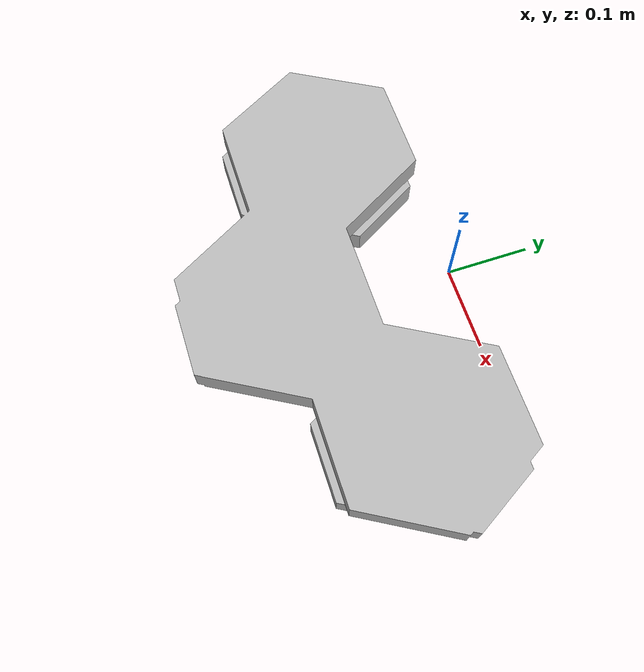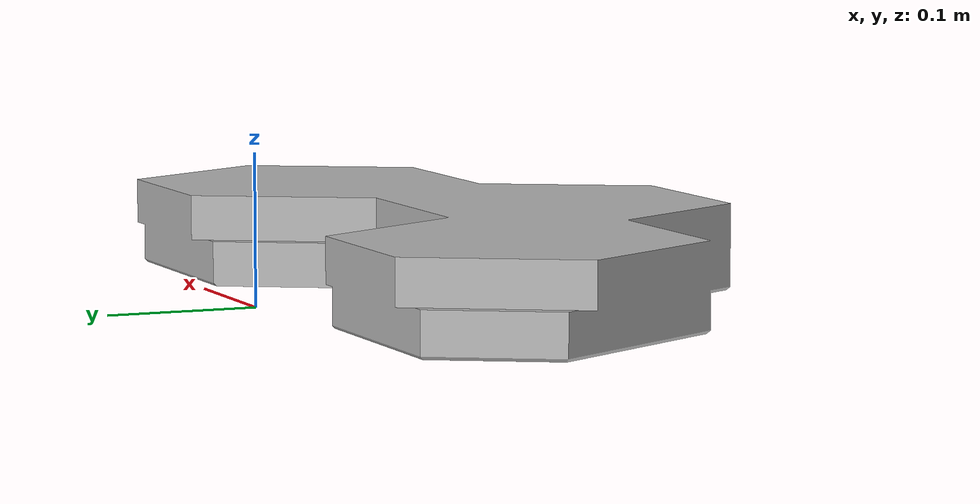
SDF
<?xml version='1.0'?>
<sdf version='1.6'>
  <model name='passive_tile'>
    <link name='link'>
      <visual name='visual_bot'>
        <pose>0 0 0 0 0 0</pose>
        <geometry>
          <mesh><uri>model://passive_tile/meshes/visual/assembled_interlocking_tiles.obj</uri></mesh>
        </geometry>
      </visual>
      <collision name='collision_bot'>
        <pose>0 0 0 0 0 0</pose>
        <geometry>
          <mesh><uri>model://passive_tile/meshes/collision/assembled_interlocking_tile_bot.obj</uri></mesh>
        </geometry>
        <surface>
          <ode>
            <mu>0.4</mu>
            <mu2>0.4</mu2>
            <slip1>1000000</slip1>
            <slip2>1000000</slip2>
          </ode>
          <torsional>
            <coefficient>0</coefficient>
          </torsional>
        </surface>
      </collision>
      <collision name='collision_top'>
        <pose>0 0 0.031 0 0 0</pose>
        <geometry>
          <mesh><uri>model://passive_tile/meshes/collision/assembled_interlocking_tile_top.obj</uri></mesh>
        </geometry>
        <surface>
          <ode>
            <mu>0.4</mu>
            <mu2>0.4</mu2>
            <slip1>1000000</slip1>
            <slip2>1000000</slip2>
          </ode>
          <torsional>
            <coefficient>0</coefficient>
          </torsional>
        </surface>
      </collision>
    </link>

    <static>1</static>
  </model>
</sdf>
